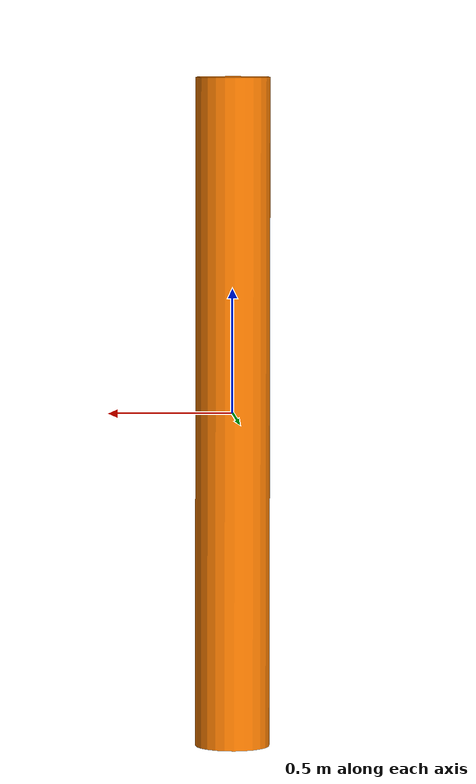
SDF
<?xml version="1.0"?>
<sdf version="1.9">
  <model name="tubo">
    <static>true</static>
    <link name="link">
      <collision name="collision">
        <geometry>
          <cylinder>
            <radius>0.15</radius>
            <length>2.7</length>
          </cylinder>
        </geometry>
      </collision>
      <visual name="visual">
        <geometry>
          <cylinder>
            <radius>0.15</radius>
            <length>2.7</length>
          </cylinder>
        </geometry>
        <material>
          <ambient>1.0 0.5 0.0 1</ambient>
          <diffuse>1.0 0.5 0.0 1</diffuse>
          <specular>0.2 0.1 0.0 1</specular>
        </material>
      </visual>
    </link>
  </model>
</sdf>
